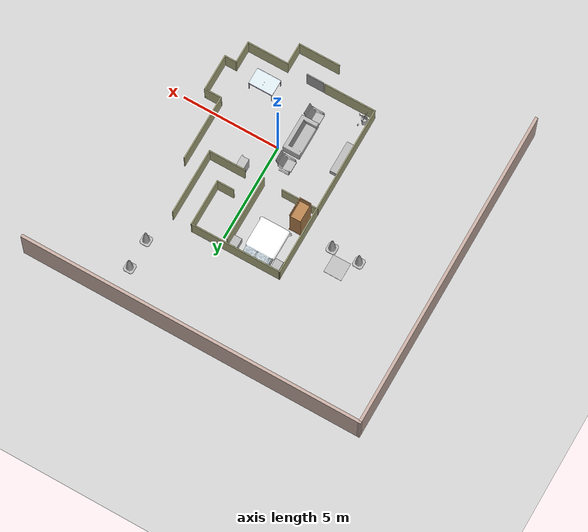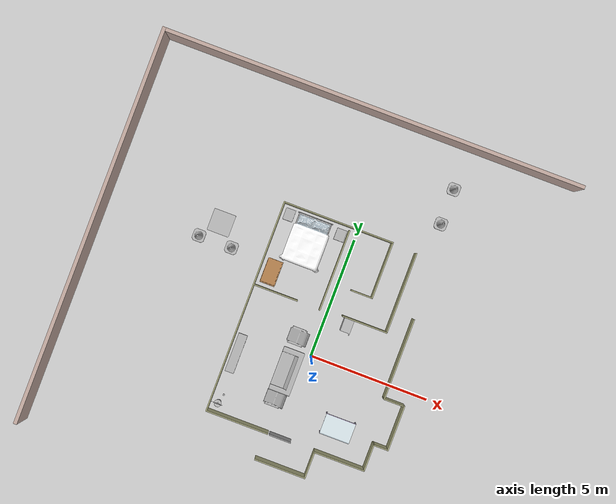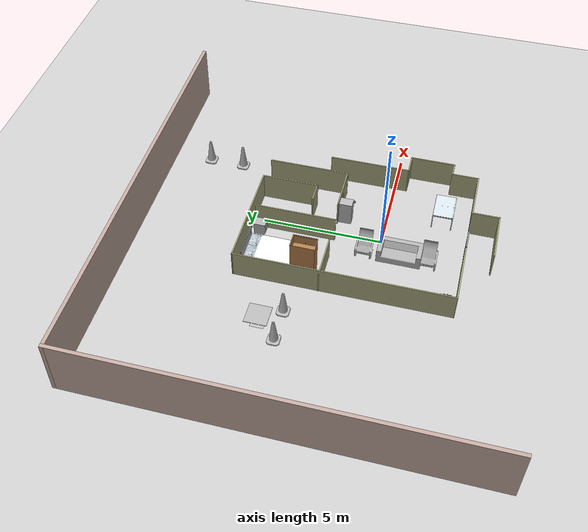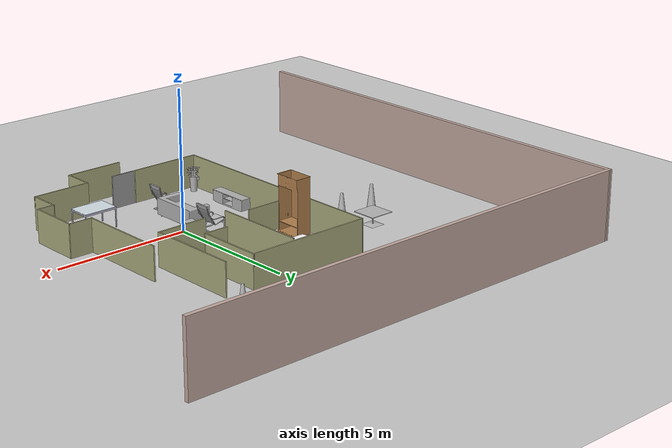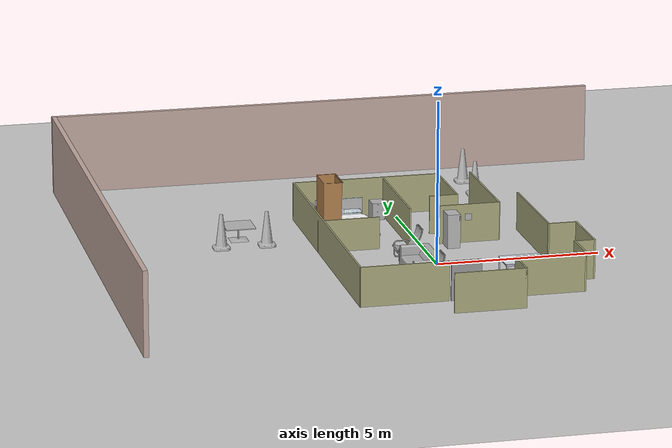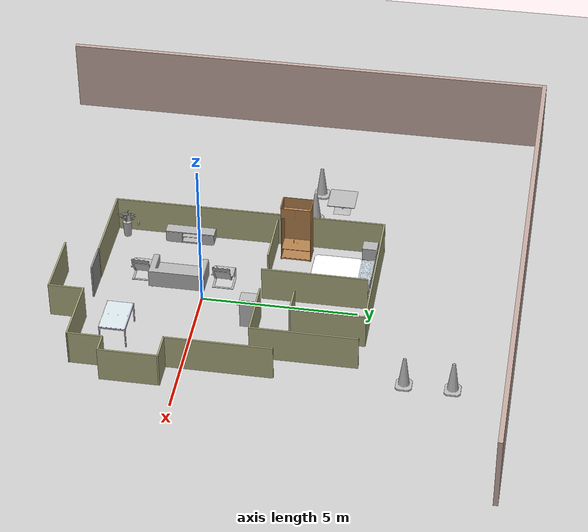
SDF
<sdf version="1.6">
 <world name="isr-testbed">
  <scene><ambient>0.4 0.4 0.4 1.0</ambient><shadows>0</shadows></scene>
  <include>
   <uri>model://ground_plane</uri>
   <material><script><uri>file://media/materials/scripts/gazebo.material</uri></script></material>
  </include>
  <include><uri>model://sun</uri></include>
  <light type="directional" name="directional">
   <pose>0 0 8 0 0 0</pose>
   <diffuse>0.3 0.3 0.3 1</diffuse>
   <specular>.1 .1 .1 1</specular>
   <attenuation>
    <range>20</range>
    <linear>0.01</linear>
    <constant>0.2</constant>
    <quadratic>0.0</quadratic>
   </attenuation>
   <direction>0 0 -1</direction>
  </light>
  <include><uri>file://isr-testbed/walls</uri><pose>0.491830 0.433522 0 0 0 0</pose></include>
  <include><uri>file://isr-testbed/wall</uri><pose>-1.19 1.86 0 0 0 0</pose></include>
  <include>
   <name>cone1</name>
   <uri>file://isr-testbed/construction_cone</uri>
   <pose>-5.94 2.97 0 0 0 0</pose>
  </include>
  <include>
   <name>cone2</name>
   <uri>file://isr-testbed/construction_cone</uri>
   <pose>-4.54 2.97 0 0 0 0</pose>
  </include>
  <include>
   <name>cone3</name>
   <uri>file://isr-testbed/construction_cone</uri>
   <pose>3.03 6.84 0 0 0 0</pose>
  </include>
  <include>
   <name>cone4</name>
   <uri>file://isr-testbed/construction_cone</uri>
   <pose>3.03 8.33 0 0 0 0</pose>
  </include>
  <include>
   <name>table_outside</name>
   <uri>file://isr-testbed/cafe_table</uri>
   <pose>-5.25 3.77 0 0 0 0</pose>
  </include>
  <include><uri>file://isr-testbed/wardrobe</uri><pose>-2.65 2.44 0 0 0 0</pose></include>
  <include><uri>file://isr-testbed/beer</uri><pose>-2.73 -2.64 0.6 0 0 1</pose></include>
  <include><uri>file://isr-testbed/plant_floor_small</uri><pose>-2.84 -3.05 0 0 0 0</pose></include>
  <include><uri>file://isr-testbed/bed</uri><pose>-1.94933 4.30992 0 0 0 0</pose></include>
  <include>
   <uri>file://isr-testbed/bedroom_nightstand</uri>
   <name>nightstand1</name>
   <pose>-0.69 5.0 0 0 0 0</pose>
  </include>
  <include>
   <uri>file://isr-testbed/bedroom_nightstand</uri>
   <name>nightstand2</name>
   <pose>-2.89 5.03713 0 0 0 0</pose>
  </include>
  <include><uri>file://isr-testbed/dinning_room_table</uri><pose>2.05802 -2.30976 0 0 0 0</pose></include>
  <include><uri>file://isr-testbed/cabinet_diamondback</uri><pose>0.91 1.69 0 0 0 -1.56643</pose></include>
  <include><uri>file://isr-testbed/sofa</uri><pose>-0.76 -0.90 0 0 0 0</pose></include>
  <include>
   <uri>file://isr-testbed/tv_chair</uri>
   <name>chair1</name>
   <pose>-0.73 -2.05 0 0 0 -1.57</pose>
  </include>
  <include>
   <uri>file://isr-testbed/tv_chair</uri>
   <name>chair2</name>
   <pose>-0.73 0.57 0 0 0 -1.57</pose>
  </include>
  <include><uri>file://isr-testbed/tv_table</uri><pose>-2.81 -0.98 0 0 0 0</pose></include>
  <include>
   <uri>file://isr-testbed/aruco_marker_0</uri>
   <pose>1.5 1.96 0.8 0 0 -1.5707963267948966</pose>
  </include>
 </world>
</sdf>

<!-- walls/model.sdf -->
<sdf version='1.6'>
  <model name='walls'>
    <pose frame=''>0.070483 0.106017 0 0 -0 0</pose>
    <link name='Door_4'>
      <collision name='Door_4_Collision'>
        <geometry>
          <box>
            <size>0.906 0.05 1.2</size>
          </box>
        </geometry>
        <pose frame=''>0 0 0.6 0 -0 0</pose>
      </collision>
      <visual name='Door_4_Visual'>
        <pose frame=''>0 0 0.6 0 -0 0</pose>
        <geometry>
          <box>
            <size>0.906 0.05 1.2</size>
          </box>
        </geometry>
        <material>
          <script>
            <uri>file://media/materials/scripts/gazebo.material</uri>
            <name>Gazebo/Grey</name>
          </script>
        </material>
      </visual>
      <pose frame=''>-0.514741 -3.87011 0 0 0 -0.000969</pose>
    </link>
    <link name='Wall_19'>
      <collision name='Wall_19_Collision'>
        <geometry>
          <box>
            <size>1.9 0.05 1</size>
          </box>
        </geometry>
        <pose frame=''>0 0 0.5 0 -0 0</pose>
      </collision>
      <visual name='Wall_19_Visual'>
        <pose frame=''>0 0 0.5 0 -0 0</pose>
        <geometry>
          <box>
            <size>1.9 0.05 1</size>
          </box>
        </geometry>
        <material>
          <script>
            <uri>file://media/materials/scripts/gazebo.material</uri>
            <name>Gazebo/Grey</name>
          </script>
          <ambient>0.666667 0.666667 0.498039 1</ambient>
        </material>
      </visual>
      <pose frame=''>-2.73248 1.48798 0 0 -0 0</pose>
    </link>
    <link name='Wall_21'>
      <collision name='Wall_21_Collision'>
        <geometry>
          <box>
            <size>2.15 0.05 1.2</size>
          </box>
        </geometry>
        <pose frame=''>0 0 0.6 0 -0 0</pose>
      </collision>
      <visual name='Wall_21_Visual'>
        <pose frame=''>0 0 0.6 0 -0 0</pose>
        <geometry>
          <box>
            <size>2.15 0.05 1.2</size>
          </box>
        </geometry>
        <material>
          <script>
            <uri>file://media/materials/scripts/gazebo.material</uri>
            <name>Gazebo/Grey</name>
          </script>
          <ambient>0.666667 0.666667 0.498039 1</ambient>
        </material>
      </visual>
      <pose frame=''>-0.092483 -4.98802 0 0 -0 0</pose>
    </link>
    <link name='Wall_22'>
      <collision name='Wall_22_Collision'>
        <geometry>
          <box>
            <size>1.15 0.05 1.2</size>
          </box>
        </geometry>
        <pose frame=''>0 0 0.6 0 -0 0</pose>
      </collision>
      <visual name='Wall_22_Visual'>
        <pose frame=''>0 0 0.6 0 -0 0</pose>
        <geometry>
          <box>
            <size>1.15 0.05 1.2</size>
          </box>
        </geometry>
        <material>
          <script>
            <uri>file://media/materials/scripts/gazebo.material</uri>
            <name>Gazebo/Grey</name>
          </script>
          <ambient>0.666667 0.666667 0.498039 1</ambient>
        </material>
      </visual>
      <pose frame=''>0.957517 -4.43802 0 0 -0 1.5708</pose>
    </link>
    <link name='Wall_23'>
      <collision name='Wall_23_Collision'>
        <geometry>
          <box>
            <size>2.15 0.05 1.2</size>
          </box>
        </geometry>
        <pose frame=''>0 0 0.6 0 -0 0</pose>
      </collision>
      <visual name='Wall_23_Visual'>
        <pose frame=''>0 0 0.6 0 -0 0</pose>
        <geometry>
          <box>
            <size>2.15 0.05 1.2</size>
          </box>
        </geometry>
        <material>
          <script>
            <uri>file://media/materials/scripts/gazebo.material</uri>
            <name>Gazebo/Grey</name>
          </script>
          <ambient>0.666667 0.666667 0.498039 1</ambient>
        </material>
      </visual>
      <pose frame=''>2.00752 -3.88802 0 0 -0 0</pose>
    </link>
    <link name='Wall_24'>
      <collision name='Wall_24_Collision'>
        <geometry>
          <box>
            <size>1.15 0.05 1.2</size>
          </box>
        </geometry>
        <pose frame=''>0 0 0.6 0 -0 0</pose>
      </collision>
      <visual name='Wall_24_Visual'>
        <pose frame=''>0 0 0.6 0 -0 0</pose>
        <geometry>
          <box>
            <size>1.15 0.05 1.2</size>
          </box>
        </geometry>
        <material>
          <script>
            <uri>file://media/materials/scripts/gazebo.material</uri>
            <name>Gazebo/Grey</name>
          </script>
          <ambient>0.666667 0.666667 0.498039 1</ambient>
        </material>
      </visual>
      <pose frame=''>3.05752 -3.33802 0 0 -0 1.5708</pose>
    </link>
    <link name='Wall_25'>
      <collision name='Wall_25_Collision'>
        <geometry>
          <box>
            <size>0.65 0.05 1.2</size>
          </box>
        </geometry>
        <pose frame=''>0 0 0.6 0 -0 0</pose>
      </collision>
      <visual name='Wall_25_Visual'>
        <pose frame=''>0 0 0.6 0 -0 0</pose>
        <geometry>
          <box>
            <size>0.65 0.05 1.2</size>
          </box>
        </geometry>
        <material>
          <script>
            <uri>file://media/materials/scripts/gazebo.material</uri>
            <name>Gazebo/Grey</name>
          </script>
          <ambient>0.666667 0.666667 0.498039 1</ambient>
        </material>
      </visual>
      <pose frame=''>3.35752 -2.78802 0 0 -0 0</pose>
    </link>
    <link name='Wall_26'>
      <collision name='Wall_26_Collision'>
        <geometry>
          <box>
            <size>1.9 0.05 1.2</size>
          </box>
        </geometry>
        <pose frame=''>0 0 0.6 0 -0 0</pose>
      </collision>
      <visual name='Wall_26_Visual'>
        <pose frame=''>0 0 0.6 0 -0 0</pose>
        <geometry>
          <box>
            <size>1.9 0.05 1.2</size>
          </box>
        </geometry>
        <material>
          <script>
            <uri>file://media/materials/scripts/gazebo.material</uri>
            <name>Gazebo/Grey</name>
          </script>
          <ambient>0.666667 0.666667 0.498039 1</ambient>
        </material>
      </visual>
      <pose frame=''>3.65752 -1.86302 0 0 -0 1.5708</pose>
    </link>
    <link name='Wall_27'>
      <collision name='Wall_27_Collision'>
        <geometry>
          <box>
            <size>0.9 0.05 1.2</size>
          </box>
        </geometry>
        <pose frame=''>0 0 0.6 0 -0 0</pose>
      </collision>
      <visual name='Wall_27_Visual'>
        <pose frame=''>0 0 0.6 0 -0 0</pose>
        <geometry>
          <box>
            <size>0.9 0.05 1.2</size>
          </box>
        </geometry>
        <material>
          <script>
            <uri>file://media/materials/scripts/gazebo.material</uri>
            <name>Gazebo/Grey</name>
          </script>
          <ambient>0.666667 0.666667 0.498039 1</ambient>
        </material>
      </visual>
      <pose frame=''>3.23252 -0.938017 0 0 -0 3.14159</pose>
    </link>
    <link name='Wall_36'>
      <collision name='Wall_36_Collision'>
        <geometry>
          <box>
            <size>1.9 0.05 1.2</size>
          </box>
        </geometry>
        <pose frame=''>0 0 0.6 0 -0 0</pose>
      </collision>
      <visual name='Wall_36_Visual'>
        <pose frame=''>0 0 0.6 0 -0 0</pose>
        <geometry>
          <box>
            <size>1.9 0.05 1.2</size>
          </box>
        </geometry>
        <material>
          <script>
            <uri>file://media/materials/scripts/gazebo.material</uri>
            <name>Gazebo/Grey</name>
          </script>
          <ambient>0.666667 0.666667 0.498039 1</ambient>
        </material>
      </visual>
      <pose frame=''>1.04652 1.55798 0 0 -0 0</pose>
    </link>
    <link name='Wall_48'>
      <collision name='Wall_48_Collision'>
        <geometry>
          <box>
            <size>8.90001 0.05 1.2</size>
          </box>
        </geometry>
        <pose frame=''>0 0 0.6 0 -0 0</pose>
      </collision>
      <visual name='Wall_48_Visual'>
        <pose frame=''>0 0 0.6 0 -0 0</pose>
        <geometry>
          <box>
            <size>8.90001 0.05 1.2</size>
          </box>
        </geometry>
        <material>
          <script>
            <uri>file://media/materials/scripts/gazebo.material</uri>
            <name>Gazebo/Grey</name>
          </script>
          <ambient>0.666667 0.666667 0.498039 1</ambient>
        </material>
      </visual>
      <pose frame=''>-3.65148 0.562983 0 0 -0 1.57215</pose>
    </link>
    <link name='Wall_49'>
      <collision name='Wall_49_Collision'>
        <geometry>
          <box>
            <size>4.65 0.05 1.2</size>
          </box>
        </geometry>
        <pose frame=''>0 0 0.6 0 -0 0</pose>
      </collision>
      <visual name='Wall_49_Visual'>
        <pose frame=''>0 0 0.6 0 -0 0</pose>
        <geometry>
          <box>
            <size>4.65 0.05 1.2</size>
          </box>
        </geometry>
        <material>
          <script>
            <uri>file://media/materials/scripts/gazebo.material</uri>
            <name>Gazebo/Grey</name>
          </script>
          <ambient>0.666667 0.666667 0.498039 1</ambient>
        </material>
      </visual>
      <pose frame=''>-1.35748 4.98798 0 0 -0 0</pose>
    </link>
    <link name='Wall_50'>
      <collision name='Wall_50_Collision'>
        <geometry>
          <box>
            <size>2.4 0.05 1.2</size>
          </box>
        </geometry>
        <pose frame=''>0 0 0.6 0 -0 0</pose>
      </collision>
      <visual name='Wall_50_Visual'>
        <pose frame=''>0 0 0.6 0 -0 0</pose>
        <geometry>
          <box>
            <size>2.4 0.05 1.2</size>
          </box>
        </geometry>
        <material>
          <script>
            <uri>file://media/materials/scripts/gazebo.material</uri>
            <name>Gazebo/Grey</name>
          </script>
          <ambient>0.666667 0.666667 0.498039 1</ambient>
        </material>
      </visual>
      <pose frame=''>0.942517 3.81298 0 0 0 -1.5708</pose>
    </link>
    <link name='Wall_51'>
      <collision name='Wall_51_Collision'>
        <geometry>
          <box>
            <size>0.9 0.05 1.2</size>
          </box>
        </geometry>
        <pose frame=''>0 0 0.6 0 -0 0</pose>
      </collision>
      <visual name='Wall_51_Visual'>
        <pose frame=''>0 0 0.6 0 -0 0</pose>
        <geometry>
          <box>
            <size>0.9 0.05 1.2</size>
          </box>
        </geometry>
        <material>
          <script>
            <uri>file://media/materials/scripts/gazebo.material</uri>
            <name>Gazebo/Grey</name>
          </script>
          <ambient>0.666667 0.666667 0.498039 1</ambient>
        </material>
      </visual>
      <pose frame=''>0.517517 2.63798 0 0 -0 3.14159</pose>
    </link>
    <link name='Wall_53'>
      <collision name='Wall_53_Collision'>
        <geometry>
          <box>
            <size>3.4 0.05 1.2</size>
          </box>
        </geometry>
        <pose frame=''>0 0 0.6 0 -0 0</pose>
      </collision>
      <visual name='Wall_53_Visual'>
        <pose frame=''>0 0 0.6 0 -0 0</pose>
        <geometry>
          <box>
            <size>3.4 0.05 1.2</size>
          </box>
        </geometry>
        <material>
          <script>
            <uri>file://media/materials/scripts/gazebo.material</uri>
            <name>Gazebo/Grey</name>
          </script>
          <ambient>0.666667 0.666667 0.498039 1</ambient>
        </material>
      </visual>
      <pose frame=''>-0.835483 3.14198 0 0 -0 1.5708</pose>
    </link>
    <link name='Wall_58'>
      <collision name='Wall_58_Collision'>
        <geometry>
          <box>
            <size>3.4 0.05 1.2</size>
          </box>
        </geometry>
        <pose frame=''>0 0 0.6 0 -0 0</pose>
      </collision>
      <visual name='Wall_58_Visual'>
        <pose frame=''>0 0 0.6 0 -0 0</pose>
        <geometry>
          <box>
            <size>3.4 0.05 1.2</size>
          </box>
        </geometry>
        <material>
          <script>
            <uri>file://media/materials/scripts/gazebo.material</uri>
            <name>Gazebo/Grey</name>
          </script>
          <ambient>0.666667 0.666667 0.498039 1</ambient>
        </material>
      </visual>
      <pose frame=''>1.97152 3.23298 0 0 -0 1.5708</pose>
    </link>
    <link name='Wall_61'>
      <collision name='Wall_61_Collision'>
        <geometry>
          <box>
            <size>2.65 0.05 1.2</size>
          </box>
        </geometry>
        <pose frame=''>0 0 0.6 0 -0 0</pose>
      </collision>
      <visual name='Wall_61_Visual'>
        <pose frame=''>0 0 0.6 0 -0 0</pose>
        <geometry>
          <box>
            <size>2.65 0.05 1.2</size>
          </box>
        </geometry>
        <material>
          <script>
            <uri>file://media/materials/scripts/gazebo.material</uri>
            <name>Gazebo/Grey</name>
          </script>
          <ambient>0.666667 0.666667 0.498039 1</ambient>
        </material>
      </visual>
      <pose frame=''>-2.34548 -3.86202 0 0 -0 0</pose>
    </link>
    <link name='Wall_63'>
      <collision name='Wall_63_Collision'>
        <geometry>
          <box>
            <size>3.4 0.05 1.2</size>
          </box>
        </geometry>
        <pose frame=''>0 0 0.6 0 -0 0</pose>
      </collision>
      <visual name='Wall_63_Visual'>
        <pose frame=''>0 0 0.6 0 -0 0</pose>
        <geometry>
          <box>
            <size>3.4 0.05 1.2</size>
          </box>
        </geometry>
        <material>
          <script>
            <uri>file://media/materials/scripts/gazebo.material</uri>
            <name>Gazebo/Grey</name>
          </script>
          <ambient>0.666667 0.666667 0.498039 1</ambient>
        </material>
      </visual>
      <pose frame=''>2.80752 0.736983 0 0 -0 1.5708</pose>
    </link>
    <static>1</static>
  </model>
</sdf>

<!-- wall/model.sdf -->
<sdf version='1.6'>
  <model name='wall'>
    <pose frame=''>-1.26581 1.80502 0 0 -0 0</pose>
    <link name='Wall_0'>
      <collision name='Wall_0_Collision'>
        <geometry>
          <box>
            <size>16.5 0.15 2.5</size>
          </box>
        </geometry>
        <pose frame=''>0 0 1.25 0 -0 0</pose>
      </collision>
      <visual name='Wall_0_Visual'>
        <pose frame=''>0 0 1.25 0 -0 0</pose>
        <geometry>
          <box>
            <size>16.5 0.15 2.5</size>
          </box>
        </geometry>
        <material>
          <script>
            <uri>file://media/materials/scripts/gazebo.material</uri>
            <name>Gazebo/Grey</name>
          </script>
          <ambient>0.760784 0.662745 0.627451 1</ambient>
        </material>
        <meta>
          <layer>0</layer>
        </meta>
      </visual>
      <pose frame=''>-8.71419 -1.8e-05 0 0 0 -1.5708</pose>
    </link>
    <link name='Wall_2'>
      <collision name='Wall_2_Collision'>
        <geometry>
          <box>
            <size>17.5784 0.15 2.5</size>
          </box>
        </geometry>
        <pose frame=''>0 0 1.25 0 -0 0</pose>
      </collision>
      <visual name='Wall_2_Visual'>
        <pose frame=''>0 0 1.25 0 -0 0</pose>
        <geometry>
          <box>
            <size>17.5784 0.15 2.5</size>
          </box>
        </geometry>
        <material>
          <script>
            <uri>file://media/materials/scripts/gazebo.material</uri>
            <name>Gazebo/Grey</name>
          </script>
          <ambient>0.760784 0.662745 0.627451 1</ambient>
        </material>
        <meta>
          <layer>0</layer>
        </meta>
      </visual>
      <pose frame=''>0 8.17066 0 0 0 -0.000496</pose>
    </link>
    <static>1</static>
  </model>
</sdf>

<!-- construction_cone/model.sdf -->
<sdf version="1.5">
  <model name="Construction Cone">
    <link name="link">
      <collision name="collision">
        <geometry>
          <mesh>
            <scale>10 10 10</scale>
            <uri>file://isr-testbed/construction_cone/meshes/construction_cone.dae</uri>
          </mesh>
        </geometry>
      </collision>
      <visual name="visual">
        <geometry>
          <mesh>
            <scale>10 10 10</scale>
            <uri>file://isr-testbed/construction_cone/meshes/construction_cone.dae</uri>
          </mesh>
        </geometry>
      </visual>
    </link>
  </model>
</sdf>

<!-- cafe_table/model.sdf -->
<sdf version="1.5">
  <model name="cafe_table">
    <static>true</static>
    <link name="link">
      <collision name="surface">
        <pose>0 0 0.45 0 0 0</pose>
        <geometry>
          <box>
            <size>0.913 0.913 0.035</size>
          </box>
        </geometry>
      </collision>

      <collision name="column">
        <pose>0 0 0.37 0 0 0</pose>
        <geometry>
          <box>
            <size>0.042 0.042 0.15</size>
          </box>
        </geometry>
      </collision>

      <collision name="base">
        <pose>0 0 0.02 0 0 0</pose>
        <geometry>
          <box>
            <size>0.56 0.56 0.04</size>
          </box>
        </geometry>
      </collision>

      <visual name="visual">
        <geometry>
          <mesh>
            <scale>1 1 0.6</scale>
            <uri>file://isr-testbed/cafe_table/meshes/cafe_table.dae</uri>
          </mesh>
        </geometry>
      </visual>
    </link>
  </model>
</sdf>

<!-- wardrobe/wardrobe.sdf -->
<sdf version='1.6'>
  <model name='wardrobe'>
    <link name='base_link'>
      <pose frame=''>0 0 0 0 -0 0</pose>
      <inertial>
        <pose frame=''>0 1.1 0 0 -0 0</pose>
        <mass>20</mass>
        <inertia>
          <ixx>7.5306636544</ixx>
          <ixy>0</ixy>
          <ixz>0</ixz>
          <iyy>2.5306656544</iyy>
          <iyz>0</iyz>
          <izz>8.33333</izz>
        </inertia>
      </inertial>
      <visual name='base_link_collision'>
        <pose frame=''>0.0 0.2 0.0 0.0 0.0 1.57</pose>
        <geometry>
          <mesh>
            <scale>1 1 1</scale>
            <uri>file://isr-testbed/wardrobe/3d-model.dae</uri>
          </mesh>
        </geometry>
        <material>
          <script>
            <uri>file://media/materials/scripts/gazebo.material</uri>
            <name>Gazebo/WoodFloor</name>
          </script>
        </material>
      </visual>
      <collision name='base_link_visual'>
        <pose frame=''>0.0 0.2 1.0 0.0 0.0 1.57</pose>
        <geometry>
          <box>
            <size>1.0 0.72 2.0</size>
          </box>
        </geometry>
      </collision>
    </link>
    <static>1</static>
  </model>
</sdf>

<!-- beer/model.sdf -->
<sdf version='1.4'>
  <model name="beer">
    <link name='link'>
      <pose>0 0 0 0 0 0</pose>
      <inertial>
        <mass>0.390</mass>
        <inertia>
          <ixx>0.00058</ixx>
          <ixy>0</ixy>
          <ixz>0</ixz>
          <iyy>0.00058</iyy>
          <iyz>0</iyz>
          <izz>0.00025</izz>
        </inertia>
      </inertial>
      <collision name='collision'>
        <geometry>
          <cylinder>
            <radius>0.03500</radius>
            <length>0.12000</length>
          </cylinder>
        </geometry>
      </collision>

      <visual name='visual'>
        <geometry>
          <cylinder>
            <radius>0.03500</radius>
            <length>0.12000</length>
          </cylinder>
        </geometry>

        <material>
          <script>
            <uri>model://beer/materials/scripts</uri>
            <uri>model://beer/materials/textures</uri>
            <name>Beer/Diffuse</name>
          </script>
        </material>
      </visual>
    </link>
  </model>
</sdf>

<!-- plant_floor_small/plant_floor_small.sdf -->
<sdf version='1.6'>
  <model name='plant_floor_small'>
    <link name='base_link'>
      <pose frame=''>0 0 0 0 -0 0</pose>
      <inertial>
        <pose frame=''>0 0 0.38 0 -0 0</pose>
        <mass>10</mass>
        <inertia>
          <ixx>0.6143330876</ixx>
          <ixy>0</ixy>
          <ixz>0</ixz>
          <iyy>0.6143330876</iyy>
          <iyz>0</iyz>
          <izz>0.162</izz>
        </inertia>
      </inertial>
      <collision name='base_link_collision'>
        <pose frame=''>0 0 0 0 -0 0</pose>
        <geometry>
          <mesh>
            <scale>1 1 1</scale>
            <uri>file://isr-testbed/plant_floor_small/plant_floor_small.stl</uri>
          </mesh>
        </geometry>
      </collision>
      <visual name='base_link_visual'>
        <pose frame=''>0 0 0 0 -0 0</pose>
        <geometry>
          <mesh>
            <scale>1 1 1</scale>
            <uri>/opt/ros/kinetic/share/cob_gazebo_objects/Media/models/plant_floor_small.dae</uri>
          </mesh>
        </geometry>
      </visual>
    </link>
    <static>0</static>
  </model>
</sdf>

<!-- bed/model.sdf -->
<sdf version='1.6'>
  <model name='bed'>
    <link name='link_0'>
      <pose frame=''>0 0 0 0 -0 0</pose>
      <inertial>
        <pose frame=''>0.2 0 0 0 -0 0</pose>
        <mass>30</mass>
        <inertia>
          <ixx>12.9999948</ixx>
          <ixy>0</ixy>
          <ixz>0</ixz>
          <iyy>7.29999708</iyy>
          <iyz>0</iyz>
          <izz>18.4999926</izz>
        </inertia>
      </inertial>
      <visual name='visual'>
        <pose frame=''>-1.35 -8 -0.3 0 -0 -0</pose>
        <geometry>
          <mesh>
            <uri>file://isr-testbed/bed/bed.dae</uri>
            <scale>1 1 1</scale>
          </mesh>
        </geometry>
        <cast_shadows>1</cast_shadows>
        <transparency>0</transparency>
      </visual>
      <collision name='collision'>
        <laser_retro>0</laser_retro>
        <max_contacts>10</max_contacts>
        <pose frame=''>0.2 0 0 0 -0 0</pose>
        <geometry>
          <box>
            <size>1.6 2.2 0.6</size>
          </box>
        </geometry>
        <surface>
          <friction>
            <ode>
              <mu>1</mu>
              <mu2>1</mu2>
              <fdir1>0 0 0</fdir1>
              <slip1>0</slip1>
              <slip2>0</slip2>
            </ode>
            <torsional>
              <coefficient>1</coefficient>
              <patch_radius>0</patch_radius>
              <surface_radius>0</surface_radius>
              <use_patch_radius>1</use_patch_radius>
              <ode>
                <slip>0</slip>
              </ode>
            </torsional>
          </friction>
          <bounce>
            <restitution_coefficient>0</restitution_coefficient>
            <threshold>1e+06</threshold>
          </bounce>
          <contact>
            <collide_without_contact>0</collide_without_contact>
            <collide_without_contact_bitmask>1</collide_without_contact_bitmask>
            <collide_bitmask>1</collide_bitmask>
            <ode>
              <soft_cfm>0</soft_cfm>
              <soft_erp>0.2</soft_erp>
              <kp>1e+13</kp>
              <kd>1</kd>
              <max_vel>0.01</max_vel>
              <min_depth>0</min_depth>
            </ode>
            <bullet>
              <split_impulse>1</split_impulse>
              <split_impulse_penetration_threshold>-0.01</split_impulse_penetration_threshold>
              <soft_cfm>0</soft_cfm>
              <soft_erp>0.2</soft_erp>
              <kp>1e+13</kp>
              <kd>1</kd>
            </bullet>
          </contact>
        </surface>
      </collision>
    </link>
    <static>0</static> <!-- center has an offset so will not behave properly if this is set to 0 -->
    <allow_auto_disable>1</allow_auto_disable>
  </model>
</sdf>

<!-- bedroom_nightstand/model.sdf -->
<sdf version='1.6'>
  <model name='bedroom_nightstand'>
    <link name='link_0'>
      <pose frame=''>0 0 0 0 -0 0</pose>
      <inertial>
        <mass>5</mass>
        <inertia>
          <ixx>0.166667</ixx>
          <ixy>0</ixy>
          <ixz>0</ixz>
          <iyy>0.166667</iyy>
          <iyz>0</iyz>
          <izz>0.166667</izz>
        </inertia>
      </inertial>
      <visual name='visual'>
        <pose frame=''>0 0 0 0 -0 0</pose>
        <geometry>
          <mesh>
            <uri>file://isr-testbed/bedroom_nightstand/bedroom_nightstand.dae</uri>
            <scale>1 1 1</scale>
          </mesh>
        </geometry>
        <material>
          <lighting>1</lighting>
          <script>
            <uri>file://media/materials/scripts/gazebo.material</uri>
            <name>Gazebo/DepthMapVS</name>
          </script>
          <ambient>0.3 0.3 0.3 1</ambient>
          <diffuse>0.7 0.7 0.7 1</diffuse>
          <specular>0.01 0.01 0.01 1</specular>
          <emissive>0 0 0 1</emissive>
        </material>
        <cast_shadows>1</cast_shadows>
        <transparency>0</transparency>
      </visual>
      <collision name='collision'>
        <laser_retro>0</laser_retro>
        <max_contacts>10</max_contacts>
        <pose frame=''>0 0 0 0 -0 0</pose>
        <geometry>
          <mesh>
            <uri>file://isr-testbed/bedroom_nightstand/bedroom_nightstand.dae</uri>
          </mesh>
        </geometry>
        <surface>
          <friction>
            <ode>
              <mu>1</mu>
              <mu2>1</mu2>
              <fdir1>0 0 0</fdir1>
              <slip1>0</slip1>
              <slip2>0</slip2>
            </ode>
            <torsional>
              <coefficient>1</coefficient>
              <patch_radius>0</patch_radius>
              <surface_radius>0</surface_radius>
              <use_patch_radius>1</use_patch_radius>
              <ode>
                <slip>0</slip>
              </ode>
            </torsional>
          </friction>
          <bounce>
            <restitution_coefficient>0</restitution_coefficient>
            <threshold>1e+06</threshold>
          </bounce>
          <contact>
            <collide_without_contact>0</collide_without_contact>
            <collide_without_contact_bitmask>1</collide_without_contact_bitmask>
            <collide_bitmask>1</collide_bitmask>
            <ode>
              <soft_cfm>0</soft_cfm>
              <soft_erp>0.2</soft_erp>
              <kp>1e+13</kp>
              <kd>1</kd>
              <max_vel>0.01</max_vel>
              <min_depth>0</min_depth>
            </ode>
            <bullet>
              <split_impulse>1</split_impulse>
              <split_impulse_penetration_threshold>-0.01</split_impulse_penetration_threshold>
              <soft_cfm>0</soft_cfm>
              <soft_erp>0.2</soft_erp>
              <kp>1e+13</kp>
              <kd>1</kd>
            </bullet>
          </contact>
        </surface>
      </collision>
    </link>
    <static>0</static>
    <allow_auto_disable>1</allow_auto_disable>
  </model>
</sdf>

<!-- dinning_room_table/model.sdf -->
<sdf version='1.6'>
  <model name='dinning_room_table'>
    <link name='base_link'>
      <pose frame=''>0 0 0 0 0 0</pose>
      <inertial>
        <pose frame=''>-0.04 0.015 0.75 0 0 0</pose>
        <mass>10</mass>
        <inertia>
          <ixx>0.68333306</ixx>
          <ixy>0</ixy>
          <ixz>0</ixz>
          <iyy>1.4166661</iyy>
          <iyz>0</iyz>
          <izz>2.0833325</izz>
        </inertia>
      </inertial>
      <visual name='visual'>
        <pose frame=''>-4.8 -1.2 0 0 -0 0</pose>
        <geometry>
          <mesh>
            <uri>file://isr-testbed/dinning_room_table/dinning_room_table.dae</uri>
            <scale>1 1 1</scale>
          </mesh>
        </geometry>
        <transparency>0</transparency>
      </visual>
      <collision name='base_collision'>
        <laser_retro>0</laser_retro>
        <max_contacts>10</max_contacts>
        <pose frame=''>-0.04 0.015 0.75 0 0 0</pose>
        <geometry>
          <box>
            <size>1.3 0.9 0.1</size>
          </box>
        </geometry>
      </collision>
      <collision name='leg1_collision'>
        <laser_retro>0</laser_retro>
        <max_contacts>10</max_contacts>
        <pose frame=''>-0.65 -0.4 0.45 0 0 0</pose>
        <geometry>
          <cylinder>
            <radius>.05</radius>
            <length>0.7</length>
          </cylinder>
        </geometry>
      </collision>
      <collision name='leg2_collision'>
        <laser_retro>0</laser_retro>
        <max_contacts>10</max_contacts>
        <pose frame=''>0.55 -0.4 0.45 0 0 0</pose>
        <geometry>
          <cylinder>
            <radius>.05</radius>
            <length>0.7</length>
          </cylinder>
        </geometry>
      </collision>
      <collision name='leg3_collision'>
        <laser_retro>0</laser_retro>
        <max_contacts>10</max_contacts>
        <pose frame=''>0.55 0.4 0.45 0 0 0</pose>
        <geometry>
          <cylinder>
            <radius>.05</radius>
            <length>0.7</length>
          </cylinder>
        </geometry>
      </collision>
      <collision name='leg4_collision'>
        <laser_retro>0</laser_retro>
        <max_contacts>10</max_contacts>
        <pose frame=''>-0.65 0.4 0.45 0 0 0</pose>
        <geometry>
          <cylinder>
            <radius>.05</radius>
            <length>0.7</length>
          </cylinder>
        </geometry>
      </collision>
    </link>
    <static>0</static>
  </model>
</sdf>

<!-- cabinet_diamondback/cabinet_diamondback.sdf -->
<sdf version='1.6'>
  <model name='cabinet_diamondback'>
    <link name='base_link'>
      <pose frame=''>0 0 0 0 -0 0</pose>
      <inertial>
        <pose frame=''>0 0 0 0 -0 0</pose>
        <mass>20</mass>
        <inertia>
          <ixx>1</ixx>
          <ixy>0</ixy>
          <ixz>0</ixz>
          <iyy>1</iyy>
          <iyz>0</iyz>
          <izz>1</izz>
        </inertia>
      </inertial>
      <collision name='base_link_collision'>
        <pose frame=''>0 0 0 0 -0 0</pose>
        <geometry>
          <mesh>
            <scale>1.8 1 1</scale>
            <uri>file://isr-testbed/cabinet_diamondback/cabinet_diamondback.stl</uri>
          </mesh>
        </geometry>
      </collision>
      <visual name='base_link_visual'>
        <pose frame=''>0 0 0 0 -0 0</pose>
        <geometry>
          <mesh>
            <scale>1.8 1 1</scale>
            <uri>/opt/ros/kinetic/share/cob_gazebo_objects/Media/models/cabinet_diamondback.dae</uri>
          </mesh>
        </geometry>
      </visual>
    </link>
    <static>1</static>
  </model>
</sdf>

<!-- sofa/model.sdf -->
<sdf version='1.6'>
  <model name='sofa'>
    <link name='link_0'>
      <pose frame=''>0 0 0 0 -0 0</pose>
      <inertial>
        <mass>20</mass>
        <pose frame=''>0.05 0.02 0.35 0 0 0</pose>
        <inertia>
          <ixx>6.5189973924</ixx>
          <ixy>0</ixy>
          <ixz>0</ixz>
          <iyy>2.3789990484</iyy>
          <iyz>0</iyz>
          <izz>7.0229971908</izz>
        </inertia>
      </inertial>
      <visual name='visual'>
        <pose frame=''>0 0 0 0 -0 0</pose>
        <geometry>
          <mesh>
            <uri>file://isr-testbed/sofa/sofa.dae</uri>
            <scale>1 1 1</scale>
          </mesh>
        </geometry>
        <material>
          <lighting>1</lighting>
          <script>
            <uri>file://media/materials/scripts/gazebo.material</uri>
            <name>Gazebo/DepthMapVS</name>
          </script>
          <ambient>0.3 0.3 0.3 1</ambient>
          <diffuse>0.7 0.7 0.7 1</diffuse>
          <specular>0.01 0.01 0.01 1</specular>
          <emissive>0 0 0 1</emissive>
        </material>
        <cast_shadows>1</cast_shadows>
        <transparency>0</transparency>
      </visual>
      <collision name='collision'>
        <laser_retro>0</laser_retro>
        <max_contacts>10</max_contacts>
        <pose frame=''>0.05 0 0.2 0 0 0</pose>
        <geometry>
          <box>
            <size>0.93 1.83 0.37</size>
          </box>
        </geometry>
        <surface>
          <friction>
            <ode>
              <mu>1</mu>
              <mu2>1</mu2>
              <fdir1>0 0 0</fdir1>
              <slip1>0</slip1>
              <slip2>0</slip2>
            </ode>
            <torsional>
              <coefficient>1</coefficient>
              <patch_radius>0</patch_radius>
              <surface_radius>0</surface_radius>
              <use_patch_radius>1</use_patch_radius>
              <ode>
                <slip>0</slip>
              </ode>
            </torsional>
          </friction>
          <bounce>
            <restitution_coefficient>0</restitution_coefficient>
            <threshold>1e+06</threshold>
          </bounce>
          <contact>
            <collide_without_contact>0</collide_without_contact>
            <collide_without_contact_bitmask>1</collide_without_contact_bitmask>
            <collide_bitmask>1</collide_bitmask>
            <ode>
              <soft_cfm>0</soft_cfm>
              <soft_erp>0.2</soft_erp>
              <kp>1e+13</kp>
              <kd>1</kd>
              <max_vel>0.01</max_vel>
              <min_depth>0</min_depth>
            </ode>
            <bullet>
              <split_impulse>1</split_impulse>
              <split_impulse_penetration_threshold>-0.01</split_impulse_penetration_threshold>
              <soft_cfm>0</soft_cfm>
              <soft_erp>0.2</soft_erp>
              <kp>1e+13</kp>
              <kd>1</kd>
            </bullet>
          </contact>
        </surface>
      </collision>
      <collision name='collision_back'>
        <laser_retro>0</laser_retro>
        <max_contacts>10</max_contacts>
        <pose frame=''>0.35 0 0.5 0 0 0</pose>
        <geometry>
          <box>
            <size>0.3 1.83 0.5</size>
          </box>
        </geometry>
        <surface>
          <friction>
            <ode>
              <mu>1</mu>
              <mu2>1</mu2>
              <fdir1>0 0 0</fdir1>
              <slip1>0</slip1>
              <slip2>0</slip2>
            </ode>
            <torsional>
              <coefficient>1</coefficient>
              <patch_radius>0</patch_radius>
              <surface_radius>0</surface_radius>
              <use_patch_radius>1</use_patch_radius>
              <ode>
                <slip>0</slip>
              </ode>
            </torsional>
          </friction>
          <bounce>
            <restitution_coefficient>0</restitution_coefficient>
            <threshold>1e+06</threshold>
          </bounce>
          <contact>
            <collide_without_contact>0</collide_without_contact>
            <collide_without_contact_bitmask>1</collide_without_contact_bitmask>
            <collide_bitmask>1</collide_bitmask>
            <ode>
              <soft_cfm>0</soft_cfm>
              <soft_erp>0.2</soft_erp>
              <kp>1e+13</kp>
              <kd>1</kd>
              <max_vel>0.01</max_vel>
              <min_depth>0</min_depth>
            </ode>
            <bullet>
              <split_impulse>1</split_impulse>
              <split_impulse_penetration_threshold>-0.01</split_impulse_penetration_threshold>
              <soft_cfm>0</soft_cfm>
              <soft_erp>0.2</soft_erp>
              <kp>1e+13</kp>
              <kd>1</kd>
            </bullet>
          </contact>
        </surface>
      </collision>
      <collision name='collision_arm_left'>
        <laser_retro>0</laser_retro>
        <max_contacts>10</max_contacts>
        <pose frame=''>0 -0.8 0.5 0 0 0</pose>
        <geometry>
          <box>
            <size>0.8 0.25 0.5</size>
          </box>
        </geometry>
        <surface>
          <friction>
            <ode>
              <mu>1</mu>
              <mu2>1</mu2>
              <fdir1>0 0 0</fdir1>
              <slip1>0</slip1>
              <slip2>0</slip2>
            </ode>
            <torsional>
              <coefficient>1</coefficient>
              <patch_radius>0</patch_radius>
              <surface_radius>0</surface_radius>
              <use_patch_radius>1</use_patch_radius>
              <ode>
                <slip>0</slip>
              </ode>
            </torsional>
          </friction>
          <bounce>
            <restitution_coefficient>0</restitution_coefficient>
            <threshold>1e+06</threshold>
          </bounce>
          <contact>
            <collide_without_contact>0</collide_without_contact>
            <collide_without_contact_bitmask>1</collide_without_contact_bitmask>
            <collide_bitmask>1</collide_bitmask>
            <ode>
              <soft_cfm>0</soft_cfm>
              <soft_erp>0.2</soft_erp>
              <kp>1e+13</kp>
              <kd>1</kd>
              <max_vel>0.01</max_vel>
              <min_depth>0</min_depth>
            </ode>
            <bullet>
              <split_impulse>1</split_impulse>
              <split_impulse_penetration_threshold>-0.01</split_impulse_penetration_threshold>
              <soft_cfm>0</soft_cfm>
              <soft_erp>0.2</soft_erp>
              <kp>1e+13</kp>
              <kd>1</kd>
            </bullet>
          </contact>
        </surface>
      </collision>
      <collision name='collision_arm_right'>
        <laser_retro>0</laser_retro>
        <max_contacts>10</max_contacts>
        <pose frame=''>0 0.8 0.5 0 0 0</pose>
        <geometry>
          <box>
            <size>0.8 0.25 0.5</size>
          </box>
        </geometry>
        <surface>
          <friction>
            <ode>
              <mu>1</mu>
              <mu2>1</mu2>
              <fdir1>0 0 0</fdir1>
              <slip1>0</slip1>
              <slip2>0</slip2>
            </ode>
            <torsional>
              <coefficient>1</coefficient>
              <patch_radius>0</patch_radius>
              <surface_radius>0</surface_radius>
              <use_patch_radius>1</use_patch_radius>
              <ode>
                <slip>0</slip>
              </ode>
            </torsional>
          </friction>
          <bounce>
            <restitution_coefficient>0</restitution_coefficient>
            <threshold>1e+06</threshold>
          </bounce>
          <contact>
            <collide_without_contact>0</collide_without_contact>
            <collide_without_contact_bitmask>1</collide_without_contact_bitmask>
            <collide_bitmask>1</collide_bitmask>
            <ode>
              <soft_cfm>0</soft_cfm>
              <soft_erp>0.2</soft_erp>
              <kp>1e+13</kp>
              <kd>1</kd>
              <max_vel>0.01</max_vel>
              <min_depth>0</min_depth>
            </ode>
            <bullet>
              <split_impulse>1</split_impulse>
              <split_impulse_penetration_threshold>-0.01</split_impulse_penetration_threshold>
              <soft_cfm>0</soft_cfm>
              <soft_erp>0.2</soft_erp>
              <kp>1e+13</kp>
              <kd>1</kd>
            </bullet>
          </contact>
        </surface>
      </collision>
    </link>
    <static>0</static>
    <allow_auto_disable>1</allow_auto_disable>
  </model>
</sdf>

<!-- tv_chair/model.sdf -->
<!-- this file was mainly automatically generated by gazebo model editor with minor modifications
such as removing harcoded paths and material script tag to load mesh UV mapping -->

<sdf version='1.6'>
  <model name='tv_chair'>
    <link name='link_0'>
      <pose frame=''>0 0 0 0 0 0</pose>
      <inertial>
        <mass>10</mass>
        <pose frame=''>0 0 0.5 0 0 0</pose>
        <inertia>
          <ixx>1.0833329</ixx>
          <ixy>0</ixy>
          <ixz>0</ixz>
          <iyy>1.0833329</iyy>
          <iyz>0</iyz>
          <izz>0.81666634</izz>
        </inertia>
      </inertial>
      <visual name='visual'>
        <pose frame=''>0 0 0 0 -0 0</pose>
        <geometry>
          <mesh>
            <uri>file://isr-testbed/tv_chair/tv_chair.dae</uri>
            <scale>1 1 1</scale>
          </mesh>
        </geometry>
        <material>
          <lighting>1</lighting>
          <script>
            <uri>file://media/materials/scripts/gazebo.material</uri>
            <name>Gazebo/DepthMapVS</name> <!-- change this one to DepthMapVS to load mesh UV mapping -->
          </script>
          <ambient>0.3 0.3 0.3 1</ambient>
          <diffuse>0.7 0.7 0.7 1</diffuse>
          <specular>0.01 0.01 0.01 1</specular>
          <emissive>0 0 0 1</emissive>
        </material>
        <cast_shadows>1</cast_shadows>
        <transparency>0</transparency>
      </visual>
      <collision name='collision_seat'>
        <laser_retro>0</laser_retro>
        <max_contacts>10</max_contacts>
        <pose frame=''>0 -0.2 0.35 -0.28 0 0</pose>
        <geometry>
          <box>
            <size>0.7 0.5 0.1</size>
          </box>
        </geometry>
        <surface>
          <friction>
            <ode>
              <mu>1</mu>
              <mu2>1</mu2>
              <fdir1>0 0 0</fdir1>
              <slip1>0</slip1>
              <slip2>0</slip2>
            </ode>
            <torsional>
              <coefficient>1</coefficient>
              <patch_radius>0</patch_radius>
              <surface_radius>0</surface_radius>
              <use_patch_radius>1</use_patch_radius>
              <ode>
                <slip>0</slip>
              </ode>
            </torsional>
          </friction>
          <bounce>
            <restitution_coefficient>0</restitution_coefficient>
            <threshold>1e+06</threshold>
          </bounce>
          <contact>
            <collide_without_contact>0</collide_without_contact>
            <collide_without_contact_bitmask>1</collide_without_contact_bitmask>
            <collide_bitmask>1</collide_bitmask>
            <ode>
              <soft_cfm>0</soft_cfm>
              <soft_erp>0.2</soft_erp>
              <kp>1e+13</kp>
              <kd>1</kd>
              <max_vel>0.01</max_vel>
              <min_depth>0</min_depth>
            </ode>
            <bullet>
              <split_impulse>1</split_impulse>
              <split_impulse_penetration_threshold>-0.01</split_impulse_penetration_threshold>
              <soft_cfm>0</soft_cfm>
              <soft_erp>0.2</soft_erp>
              <kp>1e+13</kp>
              <kd>1</kd>
            </bullet>
          </contact>
        </surface>
      </collision>
      <collision name='collision_base'>
        <laser_retro>0</laser_retro>
        <max_contacts>10</max_contacts>
        <pose frame=''>0 -0.1 0 0 -0 0</pose>
        <geometry>
          <box>
            <size>0.7 0.6 0.05</size>
          </box>
        </geometry>
        <surface>
          <friction>
            <ode>
              <mu>1</mu>
              <mu2>1</mu2>
              <fdir1>0 0 0</fdir1>
              <slip1>0</slip1>
              <slip2>0</slip2>
            </ode>
            <torsional>
              <coefficient>1</coefficient>
              <patch_radius>0</patch_radius>
              <surface_radius>0</surface_radius>
              <use_patch_radius>1</use_patch_radius>
              <ode>
                <slip>0</slip>
              </ode>
            </torsional>
          </friction>
          <bounce>
            <restitution_coefficient>0</restitution_coefficient>
            <threshold>1e+06</threshold>
          </bounce>
          <contact>
            <collide_without_contact>0</collide_without_contact>
            <collide_without_contact_bitmask>1</collide_without_contact_bitmask>
            <collide_bitmask>1</collide_bitmask>
            <ode>
              <soft_cfm>0</soft_cfm>
              <soft_erp>0.2</soft_erp>
              <kp>1e+13</kp>
              <kd>1</kd>
              <max_vel>0.01</max_vel>
              <min_depth>0</min_depth>
            </ode>
            <bullet>
              <split_impulse>1</split_impulse>
              <split_impulse_penetration_threshold>-0.01</split_impulse_penetration_threshold>
              <soft_cfm>0</soft_cfm>
              <soft_erp>0.2</soft_erp>
              <kp>1e+13</kp>
              <kd>1</kd>
            </bullet>
          </contact>
        </surface>
      </collision>
      <collision name='collision_back'>
        <laser_retro>0</laser_retro>
        <max_contacts>10</max_contacts>
        <pose frame=''>0 0.18 0.65 -0.4 0 0</pose>
        <geometry>
          <box>
            <size>0.6 0.2 0.85</size>
          </box>
        </geometry>
        <surface>
          <friction>
            <ode>
              <mu>1</mu>
              <mu2>1</mu2>
              <fdir1>0 0 0</fdir1>
              <slip1>0</slip1>
              <slip2>0</slip2>
            </ode>
            <torsional>
              <coefficient>1</coefficient>
              <patch_radius>0</patch_radius>
              <surface_radius>0</surface_radius>
              <use_patch_radius>1</use_patch_radius>
              <ode>
                <slip>0</slip>
              </ode>
            </torsional>
          </friction>
          <bounce>
            <restitution_coefficient>0</restitution_coefficient>
            <threshold>1e+06</threshold>
          </bounce>
          <contact>
            <collide_without_contact>0</collide_without_contact>
            <collide_without_contact_bitmask>1</collide_without_contact_bitmask>
            <collide_bitmask>1</collide_bitmask>
            <ode>
              <soft_cfm>0</soft_cfm>
              <soft_erp>0.2</soft_erp>
              <kp>1e+13</kp>
              <kd>1</kd>
              <max_vel>0.01</max_vel>
              <min_depth>0</min_depth>
            </ode>
            <bullet>
              <split_impulse>1</split_impulse>
              <split_impulse_penetration_threshold>-0.01</split_impulse_penetration_threshold>
              <soft_cfm>0</soft_cfm>
              <soft_erp>0.2</soft_erp>
              <kp>1e+13</kp>
              <kd>1</kd>
            </bullet>
          </contact>
        </surface>
      </collision>
      <collision name='collision_leg1'>
        <laser_retro>0</laser_retro>
        <max_contacts>10</max_contacts>
        <pose frame=''>0.33 -0.33 0.3 0 0 0</pose>
        <geometry>
          <box>
            <size>0.1 0.1 0.45</size>
          </box>
        </geometry>
        <surface>
          <friction>
            <ode>
              <mu>1</mu>
              <mu2>1</mu2>
              <fdir1>0 0 0</fdir1>
              <slip1>0</slip1>
              <slip2>0</slip2>
            </ode>
            <torsional>
              <coefficient>1</coefficient>
              <patch_radius>0</patch_radius>
              <surface_radius>0</surface_radius>
              <use_patch_radius>1</use_patch_radius>
              <ode>
                <slip>0</slip>
              </ode>
            </torsional>
          </friction>
          <bounce>
            <restitution_coefficient>0</restitution_coefficient>
            <threshold>1e+06</threshold>
          </bounce>
          <contact>
            <collide_without_contact>0</collide_without_contact>
            <collide_without_contact_bitmask>1</collide_without_contact_bitmask>
            <collide_bitmask>1</collide_bitmask>
            <ode>
              <soft_cfm>0</soft_cfm>
              <soft_erp>0.2</soft_erp>
              <kp>1e+13</kp>
              <kd>1</kd>
              <max_vel>0.01</max_vel>
              <min_depth>0</min_depth>
            </ode>
            <bullet>
              <split_impulse>1</split_impulse>
              <split_impulse_penetration_threshold>-0.01</split_impulse_penetration_threshold>
              <soft_cfm>0</soft_cfm>
              <soft_erp>0.2</soft_erp>
              <kp>1e+13</kp>
              <kd>1</kd>
            </bullet>
          </contact>
        </surface>
      </collision>
      <collision name='collision_leg2'>
        <laser_retro>0</laser_retro>
        <max_contacts>10</max_contacts>
        <pose frame=''>-0.33 -0.33 0.3 0 0 0</pose>
        <geometry>
          <box>
            <size>0.1 0.1 0.45</size>
          </box>
        </geometry>
        <surface>
          <friction>
            <ode>
              <mu>1</mu>
              <mu2>1</mu2>
              <fdir1>0 0 0</fdir1>
              <slip1>0</slip1>
              <slip2>0</slip2>
            </ode>
            <torsional>
              <coefficient>1</coefficient>
              <patch_radius>0</patch_radius>
              <surface_radius>0</surface_radius>
              <use_patch_radius>1</use_patch_radius>
              <ode>
                <slip>0</slip>
              </ode>
            </torsional>
          </friction>
          <bounce>
            <restitution_coefficient>0</restitution_coefficient>
            <threshold>1e+06</threshold>
          </bounce>
          <contact>
            <collide_without_contact>0</collide_without_contact>
            <collide_without_contact_bitmask>1</collide_without_contact_bitmask>
            <collide_bitmask>1</collide_bitmask>
            <ode>
              <soft_cfm>0</soft_cfm>
              <soft_erp>0.2</soft_erp>
              <kp>1e+13</kp>
              <kd>1</kd>
              <max_vel>0.01</max_vel>
              <min_depth>0</min_depth>
            </ode>
            <bullet>
              <split_impulse>1</split_impulse>
              <split_impulse_penetration_threshold>-0.01</split_impulse_penetration_threshold>
              <soft_cfm>0</soft_cfm>
              <soft_erp>0.2</soft_erp>
              <kp>1e+13</kp>
              <kd>1</kd>
            </bullet>
          </contact>
        </surface>
      </collision>
      <collision name='collision_arm1'>
        <laser_retro>0</laser_retro>
        <max_contacts>10</max_contacts>
        <pose frame=''>-0.33 -0.1 0.5 0 0 0</pose>
        <geometry>
          <box>
            <size>0.1 0.45 0.1</size>
          </box>
        </geometry>
        <surface>
          <friction>
            <ode>
              <mu>1</mu>
              <mu2>1</mu2>
              <fdir1>0 0 0</fdir1>
              <slip1>0</slip1>
              <slip2>0</slip2>
            </ode>
            <torsional>
              <coefficient>1</coefficient>
              <patch_radius>0</patch_radius>
              <surface_radius>0</surface_radius>
              <use_patch_radius>1</use_patch_radius>
              <ode>
                <slip>0</slip>
              </ode>
            </torsional>
          </friction>
          <bounce>
            <restitution_coefficient>0</restitution_coefficient>
            <threshold>1e+06</threshold>
          </bounce>
          <contact>
            <collide_without_contact>0</collide_without_contact>
            <collide_without_contact_bitmask>1</collide_without_contact_bitmask>
            <collide_bitmask>1</collide_bitmask>
            <ode>
              <soft_cfm>0</soft_cfm>
              <soft_erp>0.2</soft_erp>
              <kp>1e+13</kp>
              <kd>1</kd>
              <max_vel>0.01</max_vel>
              <min_depth>0</min_depth>
            </ode>
            <bullet>
              <split_impulse>1</split_impulse>
              <split_impulse_penetration_threshold>-0.01</split_impulse_penetration_threshold>
              <soft_cfm>0</soft_cfm>
              <soft_erp>0.2</soft_erp>
              <kp>1e+13</kp>
              <kd>1</kd>
            </bullet>
          </contact>
        </surface>
      </collision>
      <collision name='collision_arm2'>
        <laser_retro>0</laser_retro>
        <max_contacts>10</max_contacts>
        <pose frame=''>0.33 -0.1 0.5 0 0 0</pose>
        <geometry>
          <box>
            <size>0.1 0.45 0.1</size>
          </box>
        </geometry>
        <surface>
          <friction>
            <ode>
              <mu>1</mu>
              <mu2>1</mu2>
              <fdir1>0 0 0</fdir1>
              <slip1>0</slip1>
              <slip2>0</slip2>
            </ode>
            <torsional>
              <coefficient>1</coefficient>
              <patch_radius>0</patch_radius>
              <surface_radius>0</surface_radius>
              <use_patch_radius>1</use_patch_radius>
              <ode>
                <slip>0</slip>
              </ode>
            </torsional>
          </friction>
          <bounce>
            <restitution_coefficient>0</restitution_coefficient>
            <threshold>1e+06</threshold>
          </bounce>
          <contact>
            <collide_without_contact>0</collide_without_contact>
            <collide_without_contact_bitmask>1</collide_without_contact_bitmask>
            <collide_bitmask>1</collide_bitmask>
            <ode>
              <soft_cfm>0</soft_cfm>
              <soft_erp>0.2</soft_erp>
              <kp>1e+13</kp>
              <kd>1</kd>
              <max_vel>0.01</max_vel>
              <min_depth>0</min_depth>
            </ode>
            <bullet>
              <split_impulse>1</split_impulse>
              <split_impulse_penetration_threshold>-0.01</split_impulse_penetration_threshold>
              <soft_cfm>0</soft_cfm>
              <soft_erp>0.2</soft_erp>
              <kp>1e+13</kp>
              <kd>1</kd>
            </bullet>
          </contact>
        </surface>
      </collision>
    </link>
    <static>0</static>
    <allow_auto_disable>1</allow_auto_disable>
  </model>
</sdf>

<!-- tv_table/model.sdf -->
<sdf version='1.6'>
  <model name='tv_table'>
    <link name='link_0'>
      <pose frame=''>0 0 0 0 -0 0</pose>
      <inertial>
        <pose frame=''>-0.05 0.05 0.2 0 -0 0</pose>
        <mass>30</mass>
        <inertia>
          <ixx>7.4312470275</ixx>
          <ixy>0</ixy>
          <ixz>0</ixz>
          <iyy>1.02499959</iyy>
          <iyz>0</iyz>
          <izz>7.2062471175</izz>
        </inertia>
      </inertial>
      <visual name='visual'>
        <pose frame=''>0 0 0 0 -0 0</pose>
        <geometry>
          <mesh>
            <uri>file://isr-testbed/tv_table/tv_table.dae</uri>
            <scale>1 1 1</scale>
          </mesh>
        </geometry>
        <material>
          <lighting>1</lighting>
          <script>
            <uri>file://media/materials/scripts/gazebo.material</uri>
            <name>Gazebo/DepthMapVS</name>
          </script>
          <ambient>0.3 0.3 0.3 1</ambient>
          <diffuse>0.7 0.7 0.7 1</diffuse>
          <specular>0.01 0.01 0.01 1</specular>
          <emissive>0 0 0 1</emissive>
        </material>
        <cast_shadows>1</cast_shadows>
        <transparency>0</transparency>
      </visual>
      <collision name='collision'>
        <laser_retro>0</laser_retro>
        <max_contacts>10</max_contacts>
        <pose frame=''>-0.05 0.05 0.2 0 -0 0</pose>
        <geometry>
          <box>
            <size>0.4 1.65 0.5</size>
          </box>
        </geometry>
        <surface>
          <friction>
            <ode>
              <mu>1</mu>
              <mu2>1</mu2>
              <fdir1>0 0 0</fdir1>
              <slip1>0</slip1>
              <slip2>0</slip2>
            </ode>
            <torsional>
              <coefficient>1</coefficient>
              <patch_radius>0</patch_radius>
              <surface_radius>0</surface_radius>
              <use_patch_radius>1</use_patch_radius>
              <ode>
                <slip>0</slip>
              </ode>
            </torsional>
          </friction>
          <bounce>
            <restitution_coefficient>0</restitution_coefficient>
            <threshold>1e+06</threshold>
          </bounce>
          <contact>
            <collide_without_contact>0</collide_without_contact>
            <collide_without_contact_bitmask>1</collide_without_contact_bitmask>
            <collide_bitmask>1</collide_bitmask>
            <ode>
              <soft_cfm>0</soft_cfm>
              <soft_erp>0.2</soft_erp>
              <kp>1e+13</kp>
              <kd>1</kd>
              <max_vel>0.01</max_vel>
              <min_depth>0</min_depth>
            </ode>
            <bullet>
              <split_impulse>1</split_impulse>
              <split_impulse_penetration_threshold>-0.01</split_impulse_penetration_threshold>
              <soft_cfm>0</soft_cfm>
              <soft_erp>0.2</soft_erp>
              <kp>1e+13</kp>
              <kd>1</kd>
            </bullet>
          </contact>
        </surface>
      </collision>
    </link>
    <static>0</static>
    <allow_auto_disable>1</allow_auto_disable>
  </model>
</sdf>

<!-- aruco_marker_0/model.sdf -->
<sdf version='1.6'>
  <model name='aruco_marker_0'>
    <link name='link_0'>
      <pose frame=''>0 0 0 0 -0 0</pose>
      <inertial>
        <mass>1</mass>
        <inertia>
          <ixx>0</ixx>
          <ixy>0</ixy>
          <ixz>0</ixz>
          <iyy>0</iyy>
          <iyz>0</iyz>
          <izz>0</izz>
        </inertia>
      </inertial>
      <visual name='visual'>
        <pose frame=''>0 0 0 0 -0 0</pose>
        <geometry>
          <mesh>
            <uri>file://isr-testbed/aruco_marker_0/aruco_marker_0.dae</uri>
            <scale>0.1 0.1 0.1</scale>
          </mesh>
        </geometry>
        <material>
          <lighting>1</lighting>
          <script>
            <uri>file://media/materials/scripts/gazebo.material</uri>
            <name>Gazebo/DepthMapVS</name>
          </script>
          <ambient>0.3 0.3 0.3 1</ambient>
          <diffuse>0.7 0.7 0.7 1</diffuse>
          <specular>0.01 0.01 0.01 1</specular>
          <emissive>0 0 0 1</emissive>
        </material>
        <transparency>0</transparency>
        <cast_shadows>1</cast_shadows>
      </visual>
      <collision name='collision'>
        <laser_retro>0</laser_retro>
        <max_contacts>10</max_contacts>
        <pose frame=''>0 0 0 0 -0 0</pose>
        <geometry>
          <mesh>
            <uri>file://isr-testbed/aruco_marker_0/aruco_marker_0.dae</uri>
            <scale>0.1 0.1 0.1</scale>
          </mesh>
        </geometry>
        <surface>
          <friction>
            <ode>
              <mu>1</mu>
              <mu2>1</mu2>
              <fdir1>0 0 0</fdir1>
              <slip1>0</slip1>
              <slip2>0</slip2>
            </ode>
            <torsional>
              <coefficient>1</coefficient>
              <patch_radius>0</patch_radius>
              <surface_radius>0</surface_radius>
              <use_patch_radius>1</use_patch_radius>
              <ode>
                <slip>0</slip>
              </ode>
            </torsional>
          </friction>
          <bounce>
            <restitution_coefficient>0</restitution_coefficient>
            <threshold>1e+06</threshold>
          </bounce>
          <contact>
            <collide_without_contact>0</collide_without_contact>
            <collide_without_contact_bitmask>1</collide_without_contact_bitmask>
            <collide_bitmask>1</collide_bitmask>
            <ode>
              <soft_cfm>0</soft_cfm>
              <soft_erp>0.2</soft_erp>
              <kp>1e+13</kp>
              <kd>1</kd>
              <max_vel>0.01</max_vel>
              <min_depth>0</min_depth>
            </ode>
            <bullet>
              <split_impulse>1</split_impulse>
              <split_impulse_penetration_threshold>-0.01</split_impulse_penetration_threshold>
              <soft_cfm>0</soft_cfm>
              <soft_erp>0.2</soft_erp>
              <kp>1e+13</kp>
              <kd>1</kd>
            </bullet>
          </contact>
        </surface>
      </collision>
    </link>
    <static>1</static>
    <allow_auto_disable>1</allow_auto_disable>
  </model>
</sdf>
